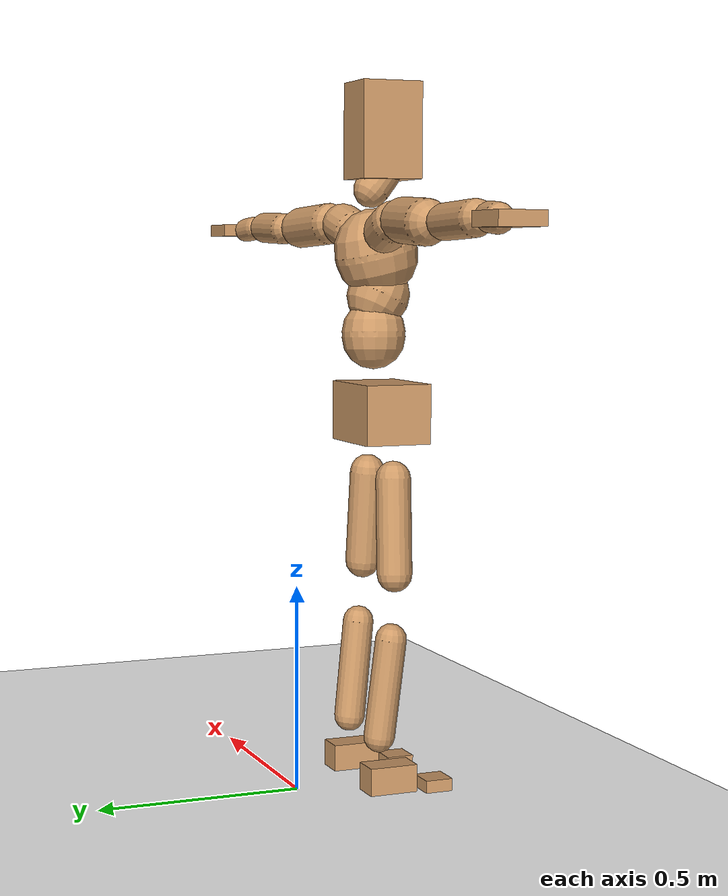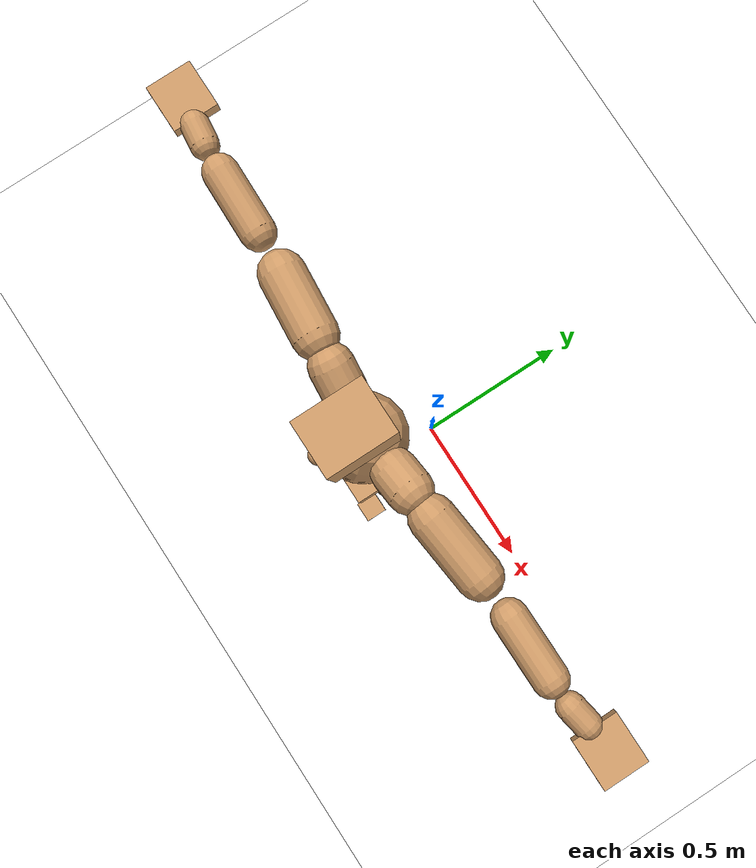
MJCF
<mujoco model="humanoid">
  <option integrator="implicitfast" />

  <visual>
    <global offwidth="1280" offheight="960" />
    <headlight active="1" ambient="0.34 0.34 0.34" diffuse="0.5 0.5 0.5" />
  </visual>

  <default>
    <joint damping="2" stiffness="2" armature="0.01" limited="true" solimplimit="0 .99 .01" />
    <geom condim="1" friction="0.7 0.005 0.0001" solimp=".99 .99 .003" solref="0.015 1" margin="0.001" rgba="0.8 0.6 .4 1" />
    <default class="smplcontact">
      <geom condim="3" friction="1. 0.005 0.0001" solref="0.015 1" solimp="0.98 0.98 0.001" priority="1" />
    </default>
    <default class="stiff_medium">
      <joint stiffness="10" />
    </default>
    <default class="stiff_medium_higher">
      <joint stiffness="50" />
    </default>
    <default class="stiff_high">
      <joint stiffness="100" />
    </default>
  </default>

  <asset>
    <texture type="skybox" builtin="gradient" rgb1="0.99 0.99 0.99" rgb2="0.608 0.828 0.892" width="100" />
    <texture builtin="flat" height="1278" mark="cross" markrgb="1 1 1" name="texgeom" random="0.01" rgb1="0.8 0.6 0.4" rgb2="0.8 0.6 0.4" type="cube" width="127" />
    <texture name="texplane" type="2d" builtin="checker" markrgb="1 1 1" rgb1="0.756 0.772 0.76" rgb2="0.6 0.6 0.6" width="100" height="100" />
    <material name="MatPlane" reflectance="0.5" texture="texplane" texrepeat="1 1" texuniform="true" />
    <material name="geom" texture="texgeom" texuniform="true" />
  </asset>

  <worldbody>
    <light name="tracking_light" pos="0 0 7" dir="0 0 -1" directional="true" cutoff="100" exponent="1" diffuse="1 1 1" specular="0.1 0.1 0.1" mode="trackcom" />
    <camera name="back" pos="0 3 2.4" xyaxes="-1 0 0 0 -1 2" mode="trackcom" />
    <camera name="side" pos="-3 0 2.4" xyaxes="0 -1 0 1 0 2" mode="trackcom" />
    <camera name="front_side" pos="-2.8 -2.8 0.8" xyaxes="0.5 -0.5 0 0.1 0.1 1" mode="trackcom" />
    <geom condim="3" name="floor" pos="0 0 0" rgba="1 1 1 1" size="100 100 .2" type="plane" material="MatPlane" />
    <body name="Pelvis" pos="-0.0018 -0.2233 0.93022" euler="90 0 0">
      <site name="Pelvis" size="0.01" />
      <freejoint name="Pelvis" />
      <geom type="box" pos="-0.0000 -0.0121 -0.0055" size="0.1069 0.0722 0.083" quat="1.0000 0.0000 0.0000 0.0000" density="3165.830099" name="Pelvis" />
      <body name="L_Hip" pos="0.0695 -0.0914 -0.0068">
        <joint name="L_Hip_x" type="hinge" pos="0 0 0" axis="1 0 0" stiffness="4.408599880952381" range="-160.0 22.92" class="stiff_medium" damping="6.465759369037958" armature="0.004214595245375107"/>
        <joint name="L_Hip_y" type="hinge" pos="0 0 0" axis="0 1 0" stiffness="4.382587142857143" range="-70.0 70.0" class="stiff_medium" damping="3.5969979326420454" armature="0.0029522274642087808"/>
        <joint name="L_Hip_z" type="hinge" pos="0 0 0" axis="0 0 1" stiffness="4.388673571428571" range="-28.65 90.0" class="stiff_medium" damping="4.3016829136391115" armature="0.004216416552364186"/>
        <geom type="capsule" density="2040.816327" fromto="0.0069 -0.075 -0.0009 0.0274 -0.3002 -0.0036" size="0.04305" name="L_Hip" />
        <body name="L_Knee" pos="0.0343 -0.3752 -0.0045">
          <joint name="L_Knee_x" type="hinge" pos="0 0 0" axis="1 0 0" range="-5.16 171.89" damping="3.260998617230182" armature="0.003937090035130735" stiffness="0.8440650238095238"/>
          <joint name="L_Knee_y" type="hinge" pos="0 0 0" axis="0 1 0" range="-4.58 6.88" damping="2.7712196147260255" armature="0.002754406242141659" stiffness="0.8712923809523809"/>
          <joint name="L_Knee_z" type="hinge" pos="0 0 0" axis="0 0 1" range="-6.88 4.58" damping="3.2584335915844957" armature="0.003945149740105496" stiffness="0.8410160394889663"/>
          <geom type="capsule" density="1234.567901" fromto="-0.0027 -0.0796 -0.0087 -0.0109 -0.3184 -0.035" size="0.03787" name="L_Knee" />
          <body name="L_Ankle" pos="-0.0136 -0.398 -0.0437">
            <joint name="L_Ankle_x" type="hinge" pos="0 0 0" axis="1 0 0" range="-45.84 45.84" class="stiff_medium" damping="1.8697716505204092" armature="0.002831265002502279" stiffness="3.43"/>
            <joint name="L_Ankle_y" type="hinge" pos="0 0 0" axis="0 1 0" range="-74.48 22.92" class="stiff_medium" damping="0.9277920293836583" armature="0.002788461450559919" stiffness="3.43"/>
            <joint name="L_Ankle_z" type="hinge" pos="0 0 0" axis="0 0 1" range="-4.58 4.58" class="stiff_medium" damping="1.7598805691123465" armature="0.0025082439403459646" stiffness="3.43"/>
            <geom type="box" pos="0.0233 -0.0239 0.0242" size="0.03381 0.03248 0.0595" quat="1.0000 0.0000 0.0000 0.0000" density="449.071558" name="L_Ankle" class="smplcontact" />
            <body name="L_Toe" pos="0.0264 -0.0558 0.1193">
              <joint name="L_Toe_x" type="hinge" pos="0 0 0" axis="1 0 0" range="-91.67 22.92" armature="0.0023457627134601602" damping="0.5673082445079871" stiffness="0.686"/>
              <joint name="L_Toe_y" type="hinge" pos="0 0 0" axis="0 1 0" range="-4.58 4.58" armature="0.0021492903725272325" damping="0.5430309743566533" stiffness="0.686"/>
              <joint name="L_Toe_z" type="hinge" pos="0 0 0" axis="0 0 1" range="-4.58 4.58" armature="0.0017520338742346665" damping="0.49028465970800705" stiffness="0.686"/>
              <geom type="box" pos="-0.003 0.0055 0.0248" size="0.03346 0.014 0.03472" quat="1.0000 0.0000 0.0000 0.0000" density="423.206892" name="L_Toe" class="smplcontact" />
            </body>
          </body>
        </body>
      </body>
      <body name="R_Hip" pos="-0.0677 -0.0905 -0.0043">
        <joint name="R_Hip_x" type="hinge" pos="0 0 0" axis="1 0 0" stiffness="4.408599880952381" range="-160.0 22.92" class="stiff_medium" damping="6.465759369037958" armature="0.004214595245375107"/>
        <joint name="R_Hip_y" type="hinge" pos="0 0 0" axis="0 1 0" stiffness="4.382587142857143" range="-70.0 70.0" class="stiff_medium" damping="3.5969979326420454" armature="0.0029522274642087808"/>
        <joint name="R_Hip_z" type="hinge" pos="0 0 0" axis="0 0 1" stiffness="4.388673571428571" range="-90.0 28.65" class="stiff_medium" damping="4.3016829136391115" armature="0.004216416552364186"/>
        <geom type="capsule" density="2040.816327" fromto="-0.0077 -0.0765 -0.0018 -0.0306 -0.3061 -0.0071" size="0.04242" name="R_Hip" />
        <body name="R_Knee" pos="-0.0383 -0.3826 -0.0089">
          <joint name="R_Knee_x" type="hinge" pos="0 0 0" axis="1 0 0" range="-5.16 171.89" damping="3.260998617230182" armature="0.003937090035130735" stiffness="0.8440650238095238"/>
          <joint name="R_Knee_y" type="hinge" pos="0 0 0" axis="0 1 0" range="-6.88 4.58" damping="2.7712196147260255" armature="0.002754406242141659" stiffness="0.8712923809523809"/>
          <joint name="R_Knee_z" type="hinge" pos="0 0 0" axis="0 0 1" range="-4.58 6.88" damping="3.2584335915844957" armature="0.003945149740105496" stiffness="0.8410160394889663"/>
          <geom type="capsule" density="1234.567901" fromto="0.0032 -0.0797 -0.0085 0.0126 -0.3187 -0.0338" size="0.03787" name="R_Knee" />
          <body name="R_Ankle" pos="0.0158 -0.3984 -0.0423">
            <joint name="R_Ankle_x" type="hinge" pos="0 0 0" axis="1 0 0" range="-45.84 45.84" class="stiff_medium" damping="1.8697716505204092" armature="0.002831265002502279" stiffness="3.43"/>
            <joint name="R_Ankle_y" type="hinge" pos="0 0 0" axis="0 1 0" range="-22.92 74.48" class="stiff_medium" damping="0.9277920293836583" armature="0.002788461450559919" stiffness="3.43"/>
            <joint name="R_Ankle_z" type="hinge" pos="0 0 0" axis="0 0 1" range="-4.58 4.58" class="stiff_medium" damping="1.7598805691123465" armature="0.0025082439403459646" stiffness="3.43"/>
            <geom type="box" pos="-0.0212 -0.0174 0.0256" size="0.03381 0.03346 0.06055" quat="1.0000 0.0000 0.0000 0.0000" density="434.700981" name="R_Ankle" class="smplcontact" />
            <body name="R_Toe" pos="-0.0254 -0.0481 0.1233">
              <joint name="R_Toe_x" type="hinge" pos="0 0 0" axis="1 0 0" range="-91.67 22.92" armature="0.0023457627134601602" damping="0.5673082445079871" stiffness="0.686"/>
              <joint name="R_Toe_y" type="hinge" pos="0 0 0" axis="0 1 0" range="-4.58 4.58" armature="0.0021492903725272325" damping="0.5430309743566533" stiffness="0.686"/>
              <joint name="R_Toe_z" type="hinge" pos="0 0 0" axis="0 0 1" range="-4.58 4.58" armature="0.0017520338742346665" damping="0.49028465970800705" stiffness="0.686"/>
              <geom type="box" pos="0.0042 0.0045 0.0227" size="0.03353 0.01512 0.03451" quat="1.0000 0.0000 0.0000 0.0000" density="407.384095" name="R_Toe" class="smplcontact" />
            </body>
          </body>
        </body>
      </body>
      <body name="Torso" pos="-0.0025 0.109 -0.0267">
        <joint name="Torso_x" type="hinge" pos="0 0 0" axis="1 0 0" range="-25.78 57.3" class="stiff_medium" damping="15.000000000000004" armature="0.010000000000000005" stiffness="10.0"/>
        <joint name="Torso_y" type="hinge" pos="0 0 0" axis="0 1 0" range="-57.3 57.3" class="stiff_high" damping="20.0" armature="0.010000000000000002" stiffness="100.0"/>
        <joint name="Torso_z" type="hinge" pos="0 0 0" axis="0 0 1" range="-34.38 34.38" class="stiff_high" damping="20.0" armature="0.01" stiffness="100.0"/>
        <geom type="capsule" density="2040.816327" fromto="0.0025 0.0608 0.0005 0.003 0.0743 0.0006" size="0.0769" name="Torso" />
        <body name="Spine" pos="0.0055 0.1352 0.0011">
          <joint name="Spine_x" type="hinge" pos="0 0 0" axis="1 0 0" stiffness="10.0" range="-25.78 57.3" class="stiff_medium" damping="15.00000000000001" armature="0.010000000000000014"/>
          <joint name="Spine_y" type="hinge" pos="0 0 0" axis="0 1 0" stiffness="10.0" range="-57.3 57.3" class="stiff_high" damping="8.0" armature="0.010000000000000002"/>
          <joint name="Spine_z" type="hinge" pos="0 0 0" axis="0 0 1" stiffness="20.0" range="-34.38 34.38" class="stiff_high" damping="12.000000000000004" armature="0.010000000000000005"/>
          <geom type="capsule" density="2040.816327" fromto="0.0007 0.0238 0.0114 0.0008 0.0291 0.014" size="0.0755" name="Spine" />
          <body name="Chest" pos="0.0015 0.0529 0.0254">
            <joint name="Chest_x" type="hinge" pos="0 0 0" axis="1 0 0" stiffness="10.0" range="-25.78 57.3" class="stiff_medium" damping="15.000000000000004" armature="0.010000000000000007"/>
            <joint name="Chest_y" type="hinge" pos="0 0 0" axis="0 1 0" stiffness="10.0" range="-57.3 57.3" class="stiff_high" damping="8.000000000000002" armature="0.010000000000000005"/>
            <joint name="Chest_z" type="hinge" pos="0 0 0" axis="0 0 1" stiffness="20.0" range="-34.38 34.38" class="stiff_high" damping="12.000000000000004" armature="0.010000000000000005"/>
            <geom type="capsule" density="2040.816327" fromto="-0.0009 0.0682 -0.0173 -0.001 0.0833 -0.0212" size="0.1002" name="Chest" />
            <body name="Neck" pos="-0.0028 0.2139 -0.0429">
              <joint name="Neck_x" type="hinge" pos="0 0 0" axis="1 0 0" range="-28.65 57.3" class="stiff_medium_higher" damping="10.000000000000004" armature="0.01000000000000001" stiffness="50.0"/>
              <joint name="Neck_y" type="hinge" pos="0 0 0" axis="0 1 0" range="-40.11 40.11" class="stiff_medium_higher" damping="10.0" armature="0.01" stiffness="50.0"/>
              <joint name="Neck_z" type="hinge" pos="0 0 0" axis="0 0 1" range="-40.11 40.11" class="stiff_medium_higher" damping="10.0" armature="0.01" stiffness="50.0"/>
              <geom type="capsule" density="1000" fromto="0.001 0.013 0.0103 0.0041 0.052 0.0411" size="0.0436" name="Neck" />
              <body name="Head" pos="0.0052 0.065 0.0513">
                <joint name="Head_x" type="hinge" pos="0 0 0" axis="1 0 0" range="-28.65 57.3" class="stiff_medium_higher" damping="1.9999999999999991" armature="0.009999999999999992" stiffness="50.0"/>
                <joint name="Head_y" type="hinge" pos="0 0 0" axis="0 1 0" range="-40.11 40.11" class="stiff_medium_higher" damping="2.0" armature="0.01" stiffness="50.0"/>
                <joint name="Head_z" type="hinge" pos="0 0 0" axis="0 0 1" range="-40.11 40.11" class="stiff_medium_higher" damping="1.9999999999999978" armature="0.00999999999999998" stiffness="50.0"/>
                <geom type="box" pos="-0.0042 0.0876 -0.0116" size="0.0606 0.1154 0.076" quat="1.0000 0.0000 0.0000 0.0000" density="1018.069894" name="Head" />
                <geom type="capsule" name="nose" size="0.02 0.01" pos="0 0.07 0.05" quat="1 0 0 0" mass="0" contype="0" conaffinity="0" />
              </body>
            </body>
            <body name="L_Thorax" pos="0.0788 0.1217 -0.0341">
              <joint name="L_Thorax_x" type="hinge" pos="0 0 0" axis="1 0 0" range="-10.89 4.58" class="stiff_medium_higher" damping="19.99999999999997" armature="0.00999999999999997" stiffness="50.0"/>
              <joint name="L_Thorax_y" type="hinge" pos="0 0 0" axis="0 1 0" range="-28.65 17.19" class="stiff_medium_higher" damping="20.000000000000004" armature="0.010000000000000005" stiffness="50.0"/>
              <joint name="L_Thorax_z" type="hinge" pos="0 0 0" axis="0 0 1" range="-31.51 40.11" class="stiff_medium_higher" damping="19.999999999999996" armature="0.009999999999999998" stiffness="50.0"/>
              <geom type="capsule" density="1000" fromto="0.0182 0.0061 -0.0018 0.0728 0.0244 -0.0071" size="0.0521" name="L_Thorax" />
              <body name="L_Shoulder" pos="0.091 0.0305 -0.0089">
                <joint name="L_Shoulder_x" type="hinge" pos="0 0 0" axis="1 0 0" range="-97.4 97.4" class="stiff_medium" damping="6.000000000000037" armature="0.010000000000000125" stiffness="10.0"/>
                <joint name="L_Shoulder_y" type="hinge" pos="0 0 0" axis="0 1 0" range="-108.86 80.21" class="stiff_medium" damping="6.0" armature="0.010000000000000002" stiffness="10.0"/>
                <joint name="L_Shoulder_z" type="hinge" pos="0 0 0" axis="0 0 1" range="-97.4 85.94" class="stiff_medium" damping="6.0" armature="0.01" stiffness="10.0"/>
                <geom type="capsule" density="1000" fromto="0.0519 -0.0026 -0.0055 0.2077 -0.0102 -0.022" size="0.0517" name="L_Shoulder" />
                <body name="L_Elbow" pos="0.2596 -0.0128 -0.0275">
                  <joint name="L_Elbow_x" type="hinge" pos="0 0 0" axis="1 0 0" range="-17.19 4.58" damping="4.99999999999999" armature="0.009999999999999962" stiffness="2.0"/>
                  <joint name="L_Elbow_y" type="hinge" pos="0 0 0" axis="0 1 0" range="-180.0 17.19" damping="5.000000000000005" armature="0.010000000000000023" stiffness="2.0"/>
                  <joint name="L_Elbow_z" type="hinge" pos="0 0 0" axis="0 0 1" range="-100.84 4.58" damping="5.000000000000001" armature="0.010000000000000005" stiffness="2.0"/>
                  <geom type="capsule" density="1000" fromto="0.0498 0.0018 -0.0002 0.1994 0.0072 -0.0009" size="0.0405" name="L_Elbow" />
                  <body name="L_Wrist" pos="0.2492 0.009 -0.0012">
                    <joint name="L_Wrist_x" type="hinge" pos="0 0 0" axis="1 0 0" range="-180.0 22.92" armature="0.010000000000000085" damping="2.0000000000000084" stiffness="2.0"/>
                    <joint name="L_Wrist_y" type="hinge" pos="0 0 0" axis="0 1 0" range="-17.19 17.19" armature="0.010000000000000038" damping="2.0000000000000036" stiffness="2.0"/>
                    <joint name="L_Wrist_z" type="hinge" pos="0 0 0" axis="0 0 1" range="-22.92 22.92" armature="0.010000000000000023" damping="2.000000000000002" stiffness="2.0"/>
                    <geom type="capsule" density="1000" fromto="0.0168 -0.0016 -0.003 0.0672 -0.0065 -0.012" size="0.0318" name="L_Wrist" class="smplcontact" />
                    <body name="L_Hand" pos="0.084 -0.0082 -0.0149">
                      <joint name="L_Hand_x" type="hinge" pos="0 0 0" axis="1 0 0" range="-17.19 17.19" armature="0.009999999999999964" damping="1.9999999999999962" stiffness="2.0"/>
                      <joint name="L_Hand_y" type="hinge" pos="0 0 0" axis="0 1 0" range="-51.57 51.57" armature="0.010000000000000024" damping="2.000000000000002" stiffness="2.0"/>
                      <joint name="L_Hand_z" type="hinge" pos="0 0 0" axis="0 0 1" range="-91.67 91.67" armature="0.010000000000000111" damping="2.000000000000011" stiffness="2.0"/>
                      <geom type="box" pos="0.0493 0.001 -0.0058" size="0.0585 0.0158 0.0538" quat="1.0000 0.0000 0.0000 0.0000" density="400.552564" name="L_Hand" class="smplcontact" />
                    </body>
                  </body>
                </body>
              </body>
            </body>
            <body name="R_Thorax" pos="-0.0818 0.1188 -0.0386">
              <joint name="R_Thorax_x" type="hinge" pos="0 0 0" axis="1 0 0" range="-10.89 4.58" class="stiff_medium_higher" damping="19.99999999999997" armature="0.00999999999999997" stiffness="50.0"/>
              <joint name="R_Thorax_y" type="hinge" pos="0 0 0" axis="0 1 0" range="-17.19 28.65" class="stiff_medium_higher" damping="20.000000000000004" armature="0.010000000000000005" stiffness="50.0"/>
              <joint name="R_Thorax_z" type="hinge" pos="0 0 0" axis="0 0 1" range="-40.11 31.51" class="stiff_medium_higher" damping="19.999999999999996" armature="0.009999999999999998" stiffness="50.0"/>
              <geom type="capsule" density="1000" fromto="-0.0192 0.0065 -0.0018 -0.0768 0.026 -0.0073" size="0.0511" name="R_Thorax" />
              <body name="R_Shoulder" pos="-0.096 0.0326 -0.0091">
                <joint name="R_Shoulder_x" type="hinge" pos="0 0 0" axis="1 0 0" range="-97.4 97.4" class="stiff_medium" damping="6.000000000000037" armature="0.010000000000000125" stiffness="10.0"/>
                <joint name="R_Shoulder_y" type="hinge" pos="0 0 0" axis="0 1 0" range="-80.21 108.86" class="stiff_medium" damping="6.0" armature="0.010000000000000002" stiffness="10.0"/>
                <joint name="R_Shoulder_z" type="hinge" pos="0 0 0" axis="0 0 1" range="-85.94 97.4" class="stiff_medium" damping="6.0" armature="0.01" stiffness="10.0"/>
                <geom type="capsule" density="1000" fromto="-0.0507 -0.0027 -0.0043 -0.203 -0.0107 -0.0171" size="0.0531" name="R_Shoulder" />
                <body name="R_Elbow" pos="-0.2537 -0.0133 -0.0214">
                  <joint name="R_Elbow_x" type="hinge" pos="0 0 0" axis="1 0 0" range="-17.19 4.58" damping="4.99999999999999" armature="0.009999999999999962" stiffness="2.0"/>
                  <joint name="R_Elbow_y" type="hinge" pos="0 0 0" axis="0 1 0" range="-17.19 180.0" damping="5.000000000000005" armature="0.010000000000000023" stiffness="2.0"/>
                  <joint name="R_Elbow_z" type="hinge" pos="0 0 0" axis="0 0 1" range="-4.58 100.84" damping="5.000000000000001" armature="0.010000000000000005" stiffness="2.0"/>
                  <geom type="capsule" density="1000" fromto="-0.0511 0.0016 -0.0011 -0.2042 0.0062 -0.0044" size="0.0408" name="R_Elbow" />
                  <body name="R_Wrist" pos="-0.2553 0.0078 -0.0056">
                    <joint name="R_Wrist_x" type="hinge" pos="0 0 0" axis="1 0 0" range="-180.0 22.92" armature="0.010000000000000085" damping="2.0000000000000084" stiffness="2.0"/>
                    <joint name="R_Wrist_y" type="hinge" pos="0 0 0" axis="0 1 0" range="-17.19 17.19" armature="0.010000000000000038" damping="2.0000000000000036" stiffness="2.0"/>
                    <joint name="R_Wrist_z" type="hinge" pos="0 0 0" axis="0 0 1" range="-22.92 22.92" armature="0.010000000000000023" damping="2.000000000000002" stiffness="2.0"/>
                    <geom type="capsule" density="1000" fromto="-0.0169 -0.0012 -0.0021 -0.0677 -0.0049 -0.0083" size="0.0326" name="R_Wrist" class="smplcontact" />
                    <body name="R_Hand" pos="-0.0846 -0.0061 -0.0103">
                      <joint name="R_Hand_x" type="hinge" pos="0 0 0" axis="1 0 0" range="-17.19 17.19" armature="0.009999999999999964" damping="1.9999999999999962" stiffness="2.0"/>
                      <joint name="R_Hand_y" type="hinge" pos="0 0 0" axis="0 1 0" range="-51.57 51.57" armature="0.010000000000000024" damping="2.000000000000002" stiffness="2.0"/>
                      <joint name="R_Hand_z" type="hinge" pos="0 0 0" axis="0 0 1" range="-91.67 91.67" armature="0.010000000000000111" damping="2.000000000000011" stiffness="2.0"/>
                      <geom type="box" pos="-0.0462 -0.0009 -0.0079" size="0.0569 0.0164 0.0546" quat="1.0000 0.0000 0.0000 0.0000" density="403.679611" name="R_Hand" class="smplcontact" />
                    </body>
                  </body>
                </body>
              </body>
            </body>
          </body>
        </body>
      </body>
    </body>
  </worldbody>
  <actuator>
    <general name="L_Hip_x" joint="L_Hip_x" biastype="affine" gainprm="126.67232863734958" biasprm="-94.9280713405198 -79.35479785714286 -0.862101249205061" ctrllimited="true" ctrlrange="-1 1" forcerange="-158.7095957142857 158.7095957142857" />
    <general name="L_Hip_y" joint="L_Hip_y" biastype="affine" gainprm="96.37812500201957" biasprm="0.0 -78.88656857142858 -0.7193995865284091" ctrllimited="true" ctrlrange="-1 1" forcerange="-157.77313714285717 157.77313714285717" />
    <general name="L_Hip_z" joint="L_Hip_z" biastype="affine" gainprm="81.79389674207934" biasprm="42.29292511695378 -78.99612428571429 -0.8603365827278223" ctrllimited="true" ctrlrange="-1 1" forcerange="-157.99224857142858 157.99224857142858" />
    <general name="L_Knee_x" joint="L_Knee_x" biastype="affine" gainprm="117.37124650535455" biasprm="110.52983863223814 -75.96585214285713 -0.8152496543075455" ctrllimited="true" ctrlrange="-1 1" forcerange="-151.93170428571426 151.93170428571426" />
    <general name="L_Knee_y" joint="L_Knee_y" biastype="affine" gainprm="7.842209054063895" biasprm="1.5739163022990366 -78.41631428571428 -0.6928049036815064" ctrllimited="true" ctrlrange="-1 1" forcerange="-156.83262857142856 156.83262857142856" />
    <general name="L_Knee_z" joint="L_Knee_z" biastype="affine" gainprm="7.569701909115847" biasprm="-1.519224641445589 -75.69144355400697 -0.8146083978961239" ctrllimited="true" ctrlrange="-1 1" forcerange="-151.38288710801393 151.38288710801393" />
    <general name="L_Ankle_x" joint="L_Ankle_x" biastype="affine" gainprm="24.69781914175538" biasprm="0.0 -30.87 -0.6232572168401364" ctrllimited="true" ctrlrange="-1 1" forcerange="-61.74 61.74" />
    <general name="L_Ankle_y" joint="L_Ankle_y" biastype="affine" gainprm="26.238738922414637" biasprm="-13.889829351536948 -30.87 -0.6185280195891055" ctrllimited="true" ctrlrange="-1 1" forcerange="-61.74 61.74" />
    <general name="L_Ankle_z" joint="L_Ankle_z" biastype="affine" gainprm="2.467626781615175" biasprm="0.0 -30.87 -0.5866268563707822" ctrllimited="true" ctrlrange="-1 1" forcerange="-61.74 61.74" />
    <general name="L_Toe_x" joint="L_Toe_x" biastype="affine" gainprm="24.69566400919501" biasprm="-14.81653635249286 -24.696 -0.22692329780319487" ctrllimited="true" ctrlrange="-1 1" forcerange="-49.392 49.392" />
    <general name="L_Toe_y" joint="L_Toe_y" biastype="affine" gainprm="1.97410142529214" biasprm="0.0 -24.696 -0.21721238974266133" ctrllimited="true" ctrlrange="-1 1" forcerange="-49.392 49.392" />
    <general name="L_Toe_z" joint="L_Toe_z" biastype="affine" gainprm="1.97410142529214" biasprm="0.0 -24.696 -0.19611386388320284" ctrllimited="true" ctrlrange="-1 1" forcerange="-49.392 49.392" />
    <general name="R_Hip_x" joint="R_Hip_x" biastype="affine" gainprm="126.67232863734958" biasprm="-94.9280713405198 -79.35479785714286 -0.862101249205061" ctrllimited="true" ctrlrange="-1 1" forcerange="-158.7095957142857 158.7095957142857" />
    <general name="R_Hip_y" joint="R_Hip_y" biastype="affine" gainprm="96.37812500201957" biasprm="0.0 -78.88656857142858 -0.7193995865284091" ctrllimited="true" ctrlrange="-1 1" forcerange="-157.77313714285717 157.77313714285717" />
    <general name="R_Hip_z" joint="R_Hip_z" biastype="affine" gainprm="81.79389674207934" biasprm="-42.29292511695378 -78.99612428571429 -0.8603365827278223" ctrllimited="true" ctrlrange="-1 1" forcerange="-157.99224857142858 157.99224857142858" />
    <general name="R_Knee_x" joint="R_Knee_x" biastype="affine" gainprm="117.37124650535455" biasprm="110.52983863223814 -75.96585214285713 -0.8152496543075455" ctrllimited="true" ctrlrange="-1 1" forcerange="-151.93170428571426 151.93170428571426" />
    <general name="R_Knee_y" joint="R_Knee_y" biastype="affine" gainprm="7.842209054063895" biasprm="-1.5739163022990366 -78.41631428571428 -0.6928049036815064" ctrllimited="true" ctrlrange="-1 1" forcerange="-156.83262857142856 156.83262857142856" />
    <general name="R_Knee_z" joint="R_Knee_z" biastype="affine" gainprm="7.569701909115847" biasprm="1.519224641445589 -75.69144355400697 -0.8146083978961239" ctrllimited="true" ctrlrange="-1 1" forcerange="-151.38288710801393 151.38288710801393" />
    <general name="R_Ankle_x" joint="R_Ankle_x" biastype="affine" gainprm="24.69781914175538" biasprm="0.0 -30.87 -0.6232572168401364" ctrllimited="true" ctrlrange="-1 1" forcerange="-61.74 61.74" />
    <general name="R_Ankle_y" joint="R_Ankle_y" biastype="affine" gainprm="26.238738922414637" biasprm="13.889829351536948 -30.87 -0.6185280195891055" ctrllimited="true" ctrlrange="-1 1" forcerange="-61.74 61.74" />
    <general name="R_Ankle_z" joint="R_Ankle_z" biastype="affine" gainprm="2.467626781615175" biasprm="0.0 -30.87 -0.5866268563707822" ctrllimited="true" ctrlrange="-1 1" forcerange="-61.74 61.74" />
    <general name="R_Toe_x" joint="R_Toe_x" biastype="affine" gainprm="24.69566400919501" biasprm="-14.81653635249286 -24.696 -0.22692329780319487" ctrllimited="true" ctrlrange="-1 1" forcerange="-49.392 49.392" />
    <general name="R_Toe_y" joint="R_Toe_y" biastype="affine" gainprm="1.97410142529214" biasprm="0.0 -24.696 -0.21721238974266133" ctrllimited="true" ctrlrange="-1 1" forcerange="-49.392 49.392" />
    <general name="R_Toe_z" joint="R_Toe_z" biastype="affine" gainprm="1.97410142529214" biasprm="0.0 -24.696 -0.19611386388320284" ctrllimited="true" ctrlrange="-1 1" forcerange="-49.392 49.392" />
    <general name="Torso_x" joint="Torso_x" biastype="affine" gainprm="174.00234510682668" biasprm="66.0153336274335 -240.0 -4.000000000000001" ctrllimited="true" ctrlrange="-1 1" forcerange="-360.0 360.0" />
    <general name="Torso_y" joint="Torso_y" biastype="affine" gainprm="240.0176787342602" biasprm="0.0 -240.0 -4.0" ctrllimited="true" ctrlrange="-1 1" forcerange="-360.0 360.0" />
    <general name="Torso_z" joint="Torso_z" biastype="affine" gainprm="144.01060724055614" biasprm="0.0 -240.0 -4.0" ctrllimited="true" ctrlrange="-1 1" forcerange="-360.0 360.0" />
    <general name="Spine_x" joint="Spine_x" biastype="affine" gainprm="174.00234510682668" biasprm="66.0153336274335 -240.0 -4.000000000000003" ctrllimited="true" ctrlrange="-1 1" forcerange="-360.0 360.0" />
    <general name="Spine_y" joint="Spine_y" biastype="affine" gainprm="240.0176787342602" biasprm="0.0 -240.0 -4.0" ctrllimited="true" ctrlrange="-1 1" forcerange="-360.0 360.0" />
    <general name="Spine_z" joint="Spine_z" biastype="affine" gainprm="144.01060724055614" biasprm="0.0 -240.0 -4.000000000000001" ctrllimited="true" ctrlrange="-1 1" forcerange="-360.0 360.0" />
    <general name="Chest_x" joint="Chest_x" biastype="affine" gainprm="174.00234510682668" biasprm="66.0153336274335 -240.0 -4.000000000000001" ctrllimited="true" ctrlrange="-1 1" forcerange="-360.0 360.0" />
    <general name="Chest_y" joint="Chest_y" biastype="affine" gainprm="240.0176787342602" biasprm="0.0 -240.0 -4.000000000000001" ctrllimited="true" ctrlrange="-1 1" forcerange="-360.0 360.0" />
    <general name="Chest_z" joint="Chest_z" biastype="affine" gainprm="144.01060724055614" biasprm="0.0 -240.0 -4.000000000000001" ctrllimited="true" ctrlrange="-1 1" forcerange="-360.0 360.0" />
    <general name="Neck_x" joint="Neck_x" biastype="affine" gainprm="27.00198885760427" biasprm="9.000662952534757 -36.0 -0.8000000000000004" ctrllimited="true" ctrlrange="-1 1" forcerange="-72.0 72.0" />
    <general name="Neck_y" joint="Neck_y" biastype="affine" gainprm="25.20185626709732" biasprm="0.0 -36.0 -0.8" ctrllimited="true" ctrlrange="-1 1" forcerange="-72.0 72.0" />
    <general name="Neck_z" joint="Neck_z" biastype="affine" gainprm="25.20185626709732" biasprm="0.0 -36.0 -0.8" ctrllimited="true" ctrlrange="-1 1" forcerange="-72.0 72.0" />
    <general name="Head_x" joint="Head_x" biastype="affine" gainprm="18.001325905069514" biasprm="6.000441968356505 -24.0 -0.7999999999999997" ctrllimited="true" ctrlrange="-1 1" forcerange="-48.0 48.0" />
    <general name="Head_y" joint="Head_y" biastype="affine" gainprm="16.801237511398213" biasprm="0.0 -24.0 -0.8" ctrllimited="true" ctrlrange="-1 1" forcerange="-48.0 48.0" />
    <general name="Head_z" joint="Head_z" biastype="affine" gainprm="16.801237511398213" biasprm="0.0 -24.0 -0.7999999999999992" ctrllimited="true" ctrlrange="-1 1" forcerange="-48.0 48.0" />
    <general name="L_Thorax_x" joint="L_Thorax_x" biastype="affine" gainprm="16.200146117011364" biasprm="-6.6078165480505335 -120.0 -1.5999999999999979" ctrllimited="true" ctrlrange="-1 1" forcerange="-240.0 240.0" />
    <general name="L_Thorax_y" joint="L_Thorax_y" biastype="affine" gainprm="48.00353574685204" biasprm="-12.00088393671301 -120.0 -1.6000000000000005" ctrllimited="true" ctrlrange="-1 1" forcerange="-240.0 240.0" />
    <general name="L_Thorax_z" joint="L_Thorax_z" biastype="affine" gainprm="75.00028861670033" biasprm="9.00589894029074 -120.0 -1.5999999999999999" ctrllimited="true" ctrlrange="-1 1" forcerange="-240.0 240.0" />
    <general name="L_Shoulder_x" joint="L_Shoulder_x" biastype="affine" gainprm="81.5976331892389" biasprm="0.0 -48.0 -1.60000000000001" ctrllimited="true" ctrlrange="-1 1" forcerange="-96.0 96.0" />
    <general name="L_Shoulder_y" joint="L_Shoulder_y" biastype="affine" gainprm="79.19745640189629" biasprm="-12.00088393671301 -48.0 -1.6" ctrllimited="true" ctrlrange="-1 1" forcerange="-96.0 96.0" />
    <general name="L_Shoulder_z" joint="L_Shoulder_z" biastype="affine" gainprm="76.79727961455369" biasprm="-4.800353574685214 -48.0 -1.6" ctrllimited="true" ctrlrange="-1 1" forcerange="-96.0 96.0" />
    <general name="L_Elbow_x" joint="L_Elbow_x" biastype="affine" gainprm="13.67849441372996" biasprm="-7.923096672353461 -72.0 -0.7999999999999985" ctrllimited="true" ctrlrange="-1 1" forcerange="-144.0 144.0" />
    <general name="L_Elbow_y" joint="L_Elbow_y" biastype="affine" gainprm="123.89813107227425" biasprm="-102.29653998619085 -72.0 -0.8000000000000009" ctrllimited="true" ctrlrange="-1 1" forcerange="-144.0 144.0" />
    <general name="L_Elbow_z" joint="L_Elbow_z" biastype="affine" gainprm="66.23733950828719" biasprm="-60.4819417669107 -72.0 -0.8000000000000003" ctrllimited="true" ctrlrange="-1 1" forcerange="-144.0 144.0" />
    <general name="L_Wrist_x" joint="L_Wrist_x" biastype="affine" gainprm="21.24973270888136" biasprm="-16.449379134196157 -12.0 -0.8000000000000034" ctrllimited="true" ctrlrange="-1 1" forcerange="-24.0 24.0" />
    <general name="L_Wrist_y" joint="L_Wrist_y" biastype="affine" gainprm="3.6002651810139037" biasprm="0.0 -12.0 -0.8000000000000015" ctrllimited="true" ctrlrange="-1 1" forcerange="-24.0 24.0" />
    <general name="L_Wrist_z" joint="L_Wrist_z" biastype="affine" gainprm="4.800353574685205" biasprm="0.0 -12.0 -0.8000000000000009" ctrllimited="true" ctrlrange="-1 1" forcerange="-24.0 24.0" />
    <general name="L_Hand_x" joint="L_Hand_x" biastype="affine" gainprm="3.6002651810139037" biasprm="0.0 -12.0 -0.7999999999999985" ctrllimited="true" ctrlrange="-1 1" forcerange="-24.0 24.0" />
    <general name="L_Hand_y" joint="L_Hand_y" biastype="affine" gainprm="10.800795543041708" biasprm="0.0 -12.0 -0.8000000000000009" ctrllimited="true" ctrlrange="-1 1" forcerange="-24.0 24.0" />
    <general name="L_Hand_z" joint="L_Hand_z" biastype="affine" gainprm="19.199319903638422" biasprm="0.0 -12.0 -0.8000000000000045" ctrllimited="true" ctrlrange="-1 1" forcerange="-24.0 24.0" />
    <general name="R_Thorax_x" joint="R_Thorax_x" biastype="affine" gainprm="16.200146117011364" biasprm="-6.6078165480505335 -120.0 -1.5999999999999979" ctrllimited="true" ctrlrange="-1 1" forcerange="-240.0 240.0" />
    <general name="R_Thorax_y" joint="R_Thorax_y" biastype="affine" gainprm="48.00353574685204" biasprm="12.000883936713002 -120.0 -1.6000000000000005" ctrllimited="true" ctrlrange="-1 1" forcerange="-240.0 240.0" />
    <general name="R_Thorax_z" joint="R_Thorax_z" biastype="affine" gainprm="75.00028861670033" biasprm="-9.00589894029074 -120.0 -1.5999999999999999" ctrllimited="true" ctrlrange="-1 1" forcerange="-240.0 240.0" />
    <general name="R_Shoulder_x" joint="R_Shoulder_x" biastype="affine" gainprm="81.5976331892389" biasprm="0.0 -48.0 -1.60000000000001" ctrllimited="true" ctrlrange="-1 1" forcerange="-96.0 96.0" />
    <general name="R_Shoulder_y" joint="R_Shoulder_y" biastype="affine" gainprm="79.19745640189629" biasprm="12.00088393671301 -48.0 -1.6" ctrllimited="true" ctrlrange="-1 1" forcerange="-96.0 96.0" />
    <general name="R_Shoulder_z" joint="R_Shoulder_z" biastype="affine" gainprm="76.79727961455369" biasprm="4.800353574685204 -48.0 -1.6" ctrllimited="true" ctrlrange="-1 1" forcerange="-96.0 96.0" />
    <general name="R_Elbow_x" joint="R_Elbow_x" biastype="affine" gainprm="13.67849441372996" biasprm="-7.923096672353461 -72.0 -0.7999999999999985" ctrllimited="true" ctrlrange="-1 1" forcerange="-144.0 144.0" />
    <general name="R_Elbow_y" joint="R_Elbow_y" biastype="affine" gainprm="123.89813107227425" biasprm="102.29653998619085 -72.0 -0.8000000000000009" ctrllimited="true" ctrlrange="-1 1" forcerange="-144.0 144.0" />
    <general name="R_Elbow_z" joint="R_Elbow_z" biastype="affine" gainprm="66.23733950828719" biasprm="60.481941766910694 -72.0 -0.8000000000000003" ctrllimited="true" ctrlrange="-1 1" forcerange="-144.0 144.0" />
    <general name="R_Wrist_x" joint="R_Wrist_x" biastype="affine" gainprm="21.24973270888136" biasprm="-16.449379134196157 -12.0 -0.8000000000000034" ctrllimited="true" ctrlrange="-1 1" forcerange="-24.0 24.0" />
    <general name="R_Wrist_y" joint="R_Wrist_y" biastype="affine" gainprm="3.6002651810139037" biasprm="0.0 -12.0 -0.8000000000000015" ctrllimited="true" ctrlrange="-1 1" forcerange="-24.0 24.0" />
    <general name="R_Wrist_z" joint="R_Wrist_z" biastype="affine" gainprm="4.800353574685205" biasprm="0.0 -12.0 -0.8000000000000009" ctrllimited="true" ctrlrange="-1 1" forcerange="-24.0 24.0" />
    <general name="R_Hand_x" joint="R_Hand_x" biastype="affine" gainprm="3.6002651810139037" biasprm="0.0 -12.0 -0.7999999999999985" ctrllimited="true" ctrlrange="-1 1" forcerange="-24.0 24.0" />
    <general name="R_Hand_y" joint="R_Hand_y" biastype="affine" gainprm="10.800795543041708" biasprm="0.0 -12.0 -0.8000000000000009" ctrllimited="true" ctrlrange="-1 1" forcerange="-24.0 24.0" />
    <general name="R_Hand_z" joint="R_Hand_z" biastype="affine" gainprm="19.199319903638422" biasprm="0.0 -12.0 -0.8000000000000045" ctrllimited="true" ctrlrange="-1 1" forcerange="-24.0 24.0" />
  </actuator>
  <contact>
    <exclude body1="Torso" body2="Chest" />
    <exclude body1="Head" body2="Chest" />
    <exclude body1="R_Knee" body2="R_Toe" />
    <exclude body1="R_Knee" body2="L_Ankle" />
    <exclude body1="R_Knee" body2="L_Toe" />
    <exclude body1="L_Knee" body2="L_Toe" />
    <exclude body1="L_Knee" body2="R_Ankle" />
    <exclude body1="L_Knee" body2="R_Toe" />
    <exclude body1="L_Shoulder" body2="Chest" />
    <exclude body1="R_Shoulder" body2="Chest" />
  </contact>
  <sensor>
    <framelinvel name="sensor_Pelvis_framelinvel" objtype="xbody" objname="Pelvis" />
    <framelinvel name="sensor_L_Hip_framelinvel" objtype="xbody" objname="L_Hip" />
    <framelinvel name="sensor_L_Knee_framelinvel" objtype="xbody" objname="L_Knee" />
    <framelinvel name="sensor_L_Ankle_framelinvel" objtype="xbody" objname="L_Ankle" />
    <framelinvel name="sensor_L_Toe_framelinvel" objtype="xbody" objname="L_Toe" />
    <framelinvel name="sensor_R_Hip_framelinvel" objtype="xbody" objname="R_Hip" />
    <framelinvel name="sensor_R_Knee_framelinvel" objtype="xbody" objname="R_Knee" />
    <framelinvel name="sensor_R_Ankle_framelinvel" objtype="xbody" objname="R_Ankle" />
    <framelinvel name="sensor_R_Toe_framelinvel" objtype="xbody" objname="R_Toe" />
    <framelinvel name="sensor_Torso_framelinvel" objtype="xbody" objname="Torso" />
    <framelinvel name="sensor_Spine_framelinvel" objtype="xbody" objname="Spine" />
    <framelinvel name="sensor_Chest_framelinvel" objtype="xbody" objname="Chest" />
    <framelinvel name="sensor_Neck_framelinvel" objtype="xbody" objname="Neck" />
    <framelinvel name="sensor_Head_framelinvel" objtype="xbody" objname="Head" />
    <framelinvel name="sensor_L_Thorax_framelinvel" objtype="xbody" objname="L_Thorax" />
    <framelinvel name="sensor_L_Shoulder_framelinvel" objtype="xbody" objname="L_Shoulder" />
    <framelinvel name="sensor_L_Elbow_framelinvel" objtype="xbody" objname="L_Elbow" />
    <framelinvel name="sensor_L_Wrist_framelinvel" objtype="xbody" objname="L_Wrist" />
    <framelinvel name="sensor_L_Hand_framelinvel" objtype="xbody" objname="L_Hand" />
    <framelinvel name="sensor_R_Thorax_framelinvel" objtype="xbody" objname="R_Thorax" />
    <framelinvel name="sensor_R_Shoulder_framelinvel" objtype="xbody" objname="R_Shoulder" />
    <framelinvel name="sensor_R_Elbow_framelinvel" objtype="xbody" objname="R_Elbow" />
    <framelinvel name="sensor_R_Wrist_framelinvel" objtype="xbody" objname="R_Wrist" />
    <framelinvel name="sensor_R_Hand_framelinvel" objtype="xbody" objname="R_Hand" />
    <frameangvel name="sensor_Pelvis_frameangvel" objtype="xbody" objname="Pelvis" />
    <frameangvel name="sensor_L_Hip_frameangvel" objtype="xbody" objname="L_Hip" />
    <frameangvel name="sensor_L_Knee_frameangvel" objtype="xbody" objname="L_Knee" />
    <frameangvel name="sensor_L_Ankle_frameangvel" objtype="xbody" objname="L_Ankle" />
    <frameangvel name="sensor_L_Toe_frameangvel" objtype="xbody" objname="L_Toe" />
    <frameangvel name="sensor_R_Hip_frameangvel" objtype="xbody" objname="R_Hip" />
    <frameangvel name="sensor_R_Knee_frameangvel" objtype="xbody" objname="R_Knee" />
    <frameangvel name="sensor_R_Ankle_frameangvel" objtype="xbody" objname="R_Ankle" />
    <frameangvel name="sensor_R_Toe_frameangvel" objtype="xbody" objname="R_Toe" />
    <frameangvel name="sensor_Torso_frameangvel" objtype="xbody" objname="Torso" />
    <frameangvel name="sensor_Spine_frameangvel" objtype="xbody" objname="Spine" />
    <frameangvel name="sensor_Chest_frameangvel" objtype="xbody" objname="Chest" />
    <frameangvel name="sensor_Neck_frameangvel" objtype="xbody" objname="Neck" />
    <frameangvel name="sensor_Head_frameangvel" objtype="xbody" objname="Head" />
    <frameangvel name="sensor_L_Thorax_frameangvel" objtype="xbody" objname="L_Thorax" />
    <frameangvel name="sensor_L_Shoulder_frameangvel" objtype="xbody" objname="L_Shoulder" />
    <frameangvel name="sensor_L_Elbow_frameangvel" objtype="xbody" objname="L_Elbow" />
    <frameangvel name="sensor_L_Wrist_frameangvel" objtype="xbody" objname="L_Wrist" />
    <frameangvel name="sensor_L_Hand_frameangvel" objtype="xbody" objname="L_Hand" />
    <frameangvel name="sensor_R_Thorax_frameangvel" objtype="xbody" objname="R_Thorax" />
    <frameangvel name="sensor_R_Shoulder_frameangvel" objtype="xbody" objname="R_Shoulder" />
    <frameangvel name="sensor_R_Elbow_frameangvel" objtype="xbody" objname="R_Elbow" />
    <frameangvel name="sensor_R_Wrist_frameangvel" objtype="xbody" objname="R_Wrist" />
    <frameangvel name="sensor_R_Hand_frameangvel" objtype="xbody" objname="R_Hand" />
    <subtreelinvel name="Chest_subtreelinvel" body="Chest" />
    <gyro name="Pelvis_gyro" site="Pelvis" />
  </sensor>
</mujoco>
